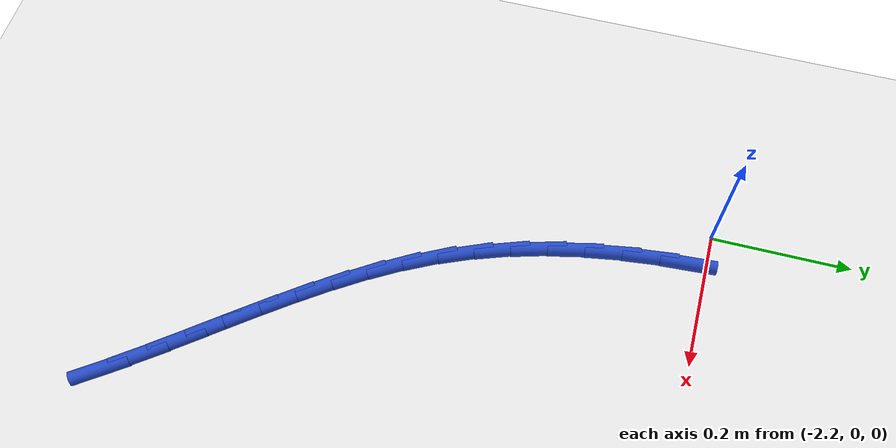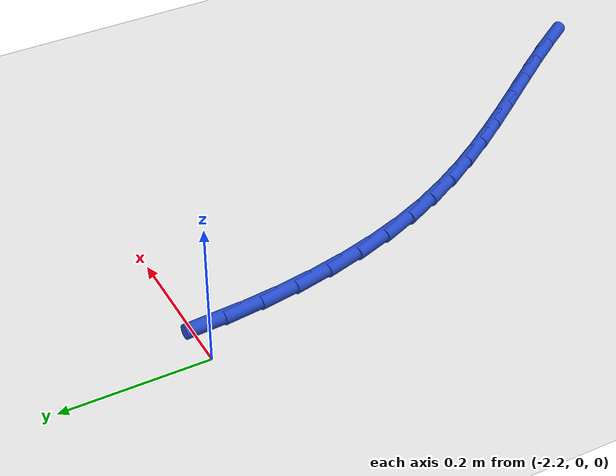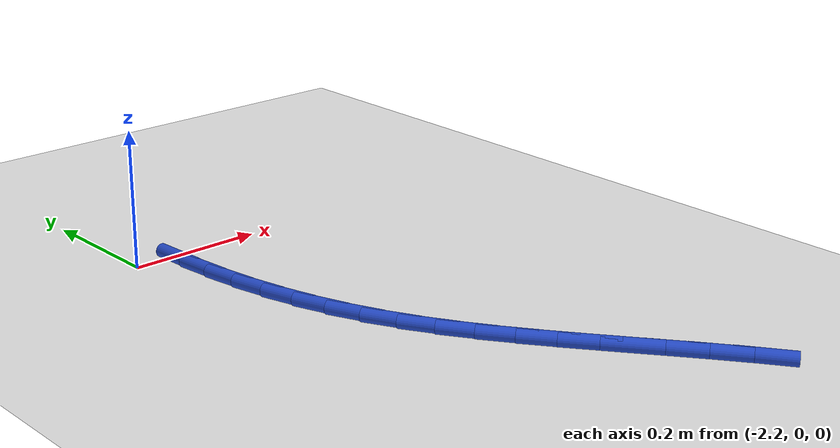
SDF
<sdf version="1.6">
 <world name="default">
  <model name="ground_plane">
   <static>1</static>
   <link name="link">
    <collision name="collision">
     <geometry><plane><normal>0 0 1</normal><size>100 100</size></plane></geometry>
     <surface><friction><ode><mu>100</mu><mu2>50</mu2></ode></friction></surface>
    </collision>
    <visual name="visual">
     <cast_shadows>0</cast_shadows>
     <geometry><plane><normal>0 0 1</normal><size>100 100</size></plane></geometry>
     <material>
      <script><uri>file://media/materials/scripts/gazebo.material</uri><name>Gazebo/WhiteGlow</name></script>
     </material>
    </visual>
   </link>
  </model>
  <model name="line">
   <link name="link_65">
    <pose>-2.1470267322011267 -0.026763524559575938 0.01 0 1.57 -1.507108322203418</pose>
    <collision name="collision">
     <geometry><cylinder><radius>0.01</radius><length>0.08</length></cylinder></geometry>
    </collision>
    <visual name="visual">
     <material>
      <script><name>Gazebo/Blue</name><uri>file://media/materials/scripts/gazebo.material</uri></script>
     </material>
     <geometry><cylinder><radius>0.01</radius><length>0.08</length></cylinder></geometry>
    </visual>
   </link>
   <link name="link_66">
    <pose>-2.1436173738865976 -0.08022331581737588 0.01 0 1.57 -1.4566058492377492</pose>
    <collision name="collision">
     <geometry><cylinder><radius>0.01</radius><length>0.08</length></cylinder></geometry>
    </collision>
    <visual name="visual">
     <material>
      <script><name>Gazebo/Blue</name><uri>file://media/materials/scripts/gazebo.material</uri></script>
     </material>
     <geometry><cylinder><radius>0.01</radius><length>0.08</length></cylinder></geometry>
    </visual>
   </link>
   <link name="link_67">
    <pose>-2.1375559570182006 -0.13307402796588025 0.01 0 1.57 -1.4035872846247501</pose>
    <collision name="collision">
     <geometry><cylinder><radius>0.01</radius><length>0.08</length></cylinder></geometry>
    </collision>
    <visual name="visual">
     <material>
      <script><name>Gazebo/Blue</name><uri>file://media/materials/scripts/gazebo.material</uri></script>
     </material>
     <geometry><cylinder><radius>0.01</radius><length>0.08</length></cylinder></geometry>
    </visual>
   </link>
   <link name="link_68">
    <pose>-2.1287715834612158 -0.185118782292935 0.01 0 1.57 -1.347733478242509</pose>
    <collision name="collision">
     <geometry><cylinder><radius>0.01</radius><length>0.08</length></cylinder></geometry>
    </collision>
    <visual name="visual">
     <material>
      <script><name>Gazebo/Blue</name><uri>file://media/materials/scripts/gazebo.material</uri></script>
     </material>
     <geometry><cylinder><radius>0.01</radius><length>0.08</length></cylinder></geometry>
    </visual>
   </link>
   <link name="link_69">
    <pose>-2.1171933550809214 -0.23616070008638812 0.01 0 1.57 -1.2887472568649818</pose>
    <collision name="collision">
     <geometry><cylinder><radius>0.01</radius><length>0.08</length></cylinder></geometry>
    </collision>
    <visual name="visual">
     <material>
      <script><name>Gazebo/Blue</name><uri>file://media/materials/scripts/gazebo.material</uri></script>
     </material>
     <geometry><cylinder><radius>0.01</radius><length>0.08</length></cylinder></geometry>
    </visual>
   </link>
   <link name="link_70">
    <pose>-2.102750373742597 -0.2860029026340878 0.01 0 1.57 -1.2263702612136025</pose>
    <collision name="collision">
     <geometry><cylinder><radius>0.01</radius><length>0.08</length></cylinder></geometry>
    </collision>
    <visual name="visual">
     <material>
      <script><name>Gazebo/Blue</name><uri>file://media/materials/scripts/gazebo.material</uri></script>
     </material>
     <geometry><cylinder><radius>0.01</radius><length>0.08</length></cylinder></geometry>
    </visual>
   </link>
   <link name="link_71">
    <pose>-2.085371741311521 -0.3344485112238797 0.01 0 1.57 -1.1604056490542984</pose>
    <collision name="collision">
     <geometry><cylinder><radius>0.01</radius><length>0.08</length></cylinder></geometry>
    </collision>
    <visual name="visual">
     <material>
      <script><name>Gazebo/Blue</name><uri>file://media/materials/scripts/gazebo.material</uri></script>
     </material>
     <geometry><cylinder><radius>0.01</radius><length>0.08</length></cylinder></geometry>
    </visual>
   </link>
   <link name="link_72">
    <pose>-2.0649865704859396 -0.3813006587475558 0.01 0 1.57 -1.0934022686044906</pose>
    <collision name="collision">
     <geometry><cylinder><radius>0.01</radius><length>0.08</length></cylinder></geometry>
    </collision>
    <visual name="visual">
     <material>
      <script><name>Gazebo/Blue</name><uri>file://media/materials/scripts/gazebo.material</uri></script>
     </material>
     <geometry><cylinder><radius>0.01</radius><length>0.08</length></cylinder></geometry>
    </visual>
   </link>
   <link name="link_73">
    <pose>-2.041621764793049 -0.426467228648094 0.01 0 1.57 -1.0348990675749872</pose>
    <collision name="collision">
     <geometry><cylinder><radius>0.01</radius><length>0.08</length></cylinder></geometry>
    </collision>
    <visual name="visual">
     <material>
      <script><name>Gazebo/Blue</name><uri>file://media/materials/scripts/gazebo.material</uri></script>
     </material>
     <geometry><cylinder><radius>0.01</radius><length>0.08</length></cylinder></geometry>
    </visual>
   </link>
   <link name="link_74">
    <pose>-2.0156405965921977 -0.47021641239478346 0.01 0 1.57 -0.987506433872797</pose>
    <collision name="collision">
     <geometry><cylinder><radius>0.01</radius><length>0.08</length></cylinder></geometry>
    </collision>
    <visual name="visual">
     <material>
      <script><name>Gazebo/Blue</name><uri>file://media/materials/scripts/gazebo.material</uri></script>
     </material>
     <geometry><cylinder><radius>0.01</radius><length>0.08</length></cylinder></geometry>
    </visual>
   </link>
   <link name="link_75">
    <pose>-1.987478605102101 -0.5128938115109302 0.01 0 1.57 -0.9514610007371493</pose>
    <collision name="collision">
     <geometry><cylinder><radius>0.01</radius><length>0.08</length></cylinder></geometry>
    </collision>
    <visual name="visual">
     <material>
      <script><name>Gazebo/Blue</name><uri>file://media/materials/scripts/gazebo.material</uri></script>
     </material>
     <geometry><cylinder><radius>0.01</radius><length>0.08</length></cylinder></geometry>
    </visual>
   </link>
   <link name="link_76">
    <pose>-1.9575713295414772 -0.554845027519838 0.01 0 1.57 -0.9266943785693021</pose>
    <collision name="collision">
     <geometry><cylinder><radius>0.01</radius><length>0.08</length></cylinder></geometry>
    </collision>
    <visual name="visual">
     <material>
      <script><name>Gazebo/Blue</name><uri>file://media/materials/scripts/gazebo.material</uri></script>
     </material>
     <geometry><cylinder><radius>0.01</radius><length>0.08</length></cylinder></geometry>
    </visual>
   </link>
   <link name="link_77">
    <pose>-1.9263543091290416 -0.5964156619448129 0.01 0 1.57 -0.9129756643234735</pose>
    <collision name="collision">
     <geometry><cylinder><radius>0.01</radius><length>0.08</length></cylinder></geometry>
    </collision>
    <visual name="visual">
     <material>
      <script><name>Gazebo/Blue</name><uri>file://media/materials/scripts/gazebo.material</uri></script>
     </material>
     <geometry><cylinder><radius>0.01</radius><length>0.08</length></cylinder></geometry>
    </visual>
   </link>
   <link name="link_78">
    <pose>-1.8942630830835103 -0.6379513163091606 0.01 0 1.57 -0.9100094744288255</pose>
    <collision name="collision">
     <geometry><cylinder><radius>0.01</radius><length>0.08</length></cylinder></geometry>
    </collision>
    <visual name="visual">
     <material>
      <script><name>Gazebo/Blue</name><uri>file://media/materials/scripts/gazebo.material</uri></script>
     </material>
     <geometry><cylinder><radius>0.01</radius><length>0.08</length></cylinder></geometry>
    </visual>
   </link>
   <link name="link_79">
    <pose>-1.8617331906236003 -0.6797975921361852 0.01 0 1.57 -0.9174880085814999</pose>
    <collision name="collision">
     <geometry><cylinder><radius>0.01</radius><length>0.08</length></cylinder></geometry>
    </collision>
    <visual name="visual">
     <material>
      <script><name>Gazebo/Blue</name><uri>file://media/materials/scripts/gazebo.material</uri></script>
     </material>
     <geometry><cylinder><radius>0.01</radius><length>0.08</length></cylinder></geometry>
    </visual>
   </link>
   <link name="link_80">
    <pose>-1.8292001709680268 -0.7223000909491923 0.01 0 1.57 -0.935102644213735</pose>
    <collision name="collision">
     <geometry><cylinder><radius>0.01</radius><length>0.08</length></cylinder></geometry>
    </collision>
    <visual name="visual">
     <material>
      <script><name>Gazebo/Blue</name><uri>file://media/materials/scripts/gazebo.material</uri></script>
     </material>
     <geometry><cylinder><radius>0.01</radius><length>0.08</length></cylinder></geometry>
    </visual>
   </link>
   <link name="link_81">
    <pose>-1.7970995633355076 -0.7658044142714874 0.01 0 1.57 -0.959137567797784</pose>
    <collision name="collision">
     <geometry><cylinder><radius>0.01</radius><length>0.08</length></cylinder></geometry>
    </collision>
    <visual name="visual">
     <material>
      <script><name>Gazebo/Blue</name><uri>file://media/materials/scripts/gazebo.material</uri></script>
     </material>
     <geometry><cylinder><radius>0.01</radius><length>0.08</length></cylinder></geometry>
    </visual>
   </link>
  </model>
 </world>
</sdf>
